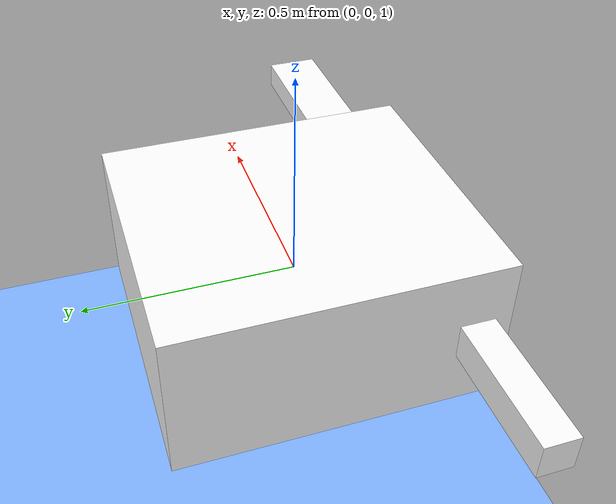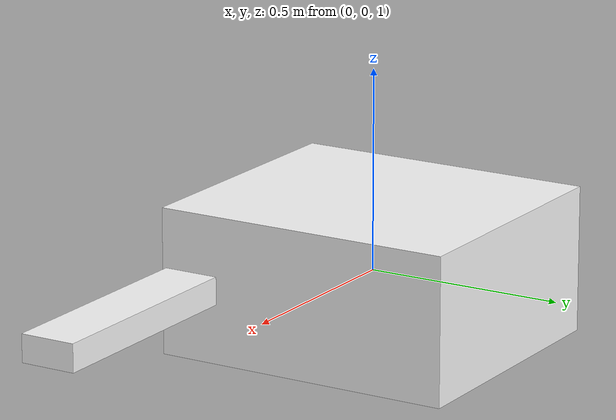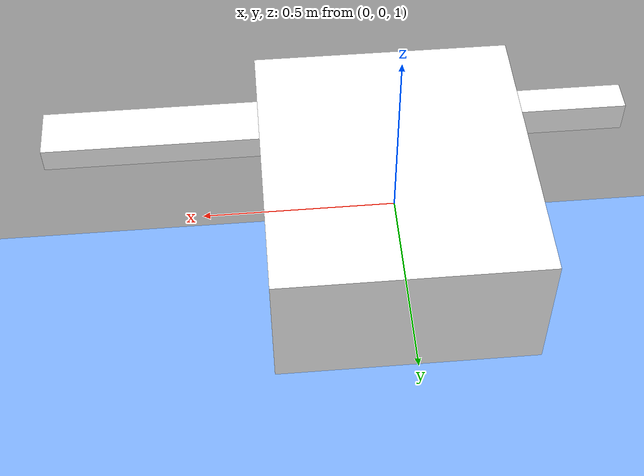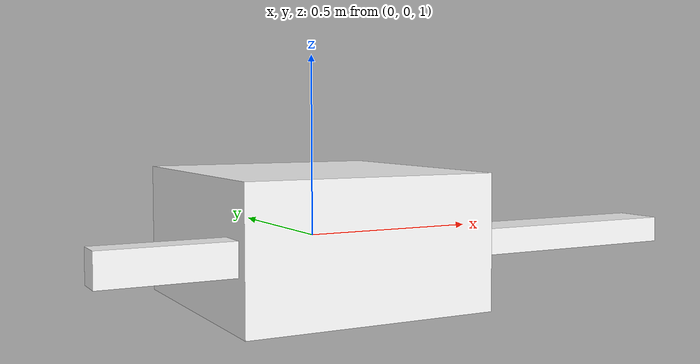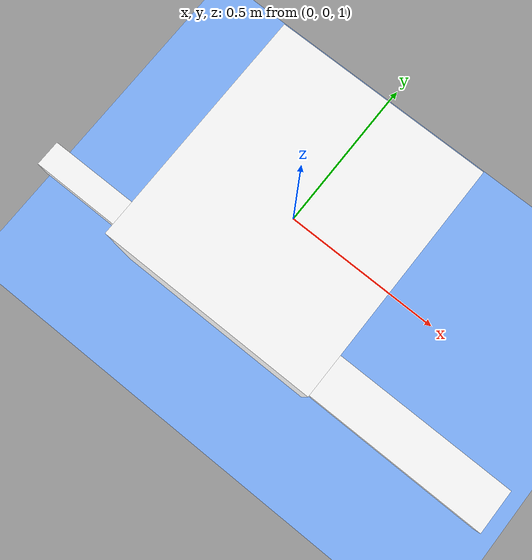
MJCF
<mujoco>
    <worldbody>
        <light diffuse=".5 .5 .5" pos="0 0 2" dir="0 -1 0" />
        <geom type="plane" size="10 10 0.1" rgba="0.5 0.7 1 1" />

        <body name="flappybird" pos="0 0 1" euler="0 0 0">
            <joint type="free" axis="0 0 0" pos="0 0 0" />
            <body name="body" pos="0 0 0" euler="0 0 0">
                <geom type="box" size="0.3411553646452717 0.3808522964557395 0.18302968738890985" rgba="1 1 1 1" mass="0.01121710663151504" />
            </body>

            <body name="wing1" pos=".5 -.3 0" euler="0 -90 0">
                <joint name="joint1" type="hinge" axis="0 1 0" pos="0 0 .25" range="-45 45" />
                <geom type="box" size="0.03469032000037834 0.0704981197379702 0.4290969668276114" rgba="1 1 1 1" mass="0.60198956978099" />
            </body>

            <body name="wing2" pos="-.5 -.3 0" euler="0 90 0">
                <joint name="joint2" type="hinge" axis="0 1 0" pos="0 0 .25" range="-45 45" />
                <geom type="box" size="0.04338283294081801 0.041692231362024115 0.17055915060951382" rgba="1 1 1 1" mass="0.5766347097039373" />
            </body>

        </body>
    </worldbody>

    <actuator>
        <motor joint="joint1" name="m1" gear="8.589053311246168" ctrllimited="true" ctrlrange="-5 5" />
        <motor joint="joint2" name="m2" gear="12.916404760200958" ctrllimited="true" ctrlrange="-5 5" />

</actuator>

</mujoco>
